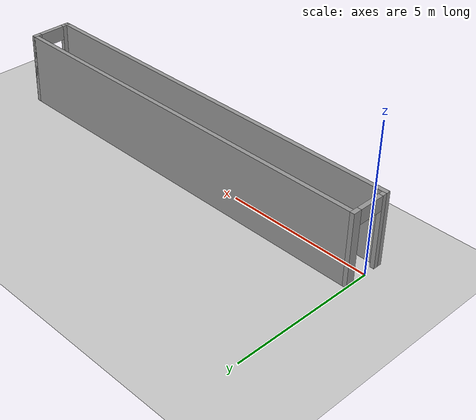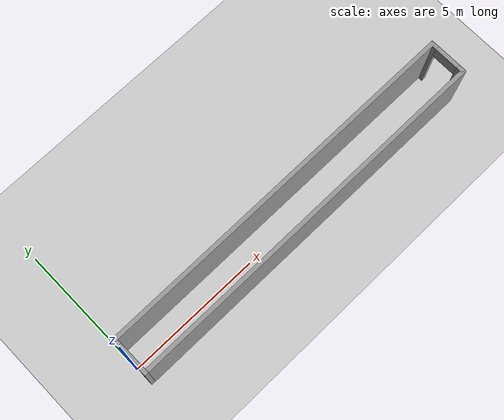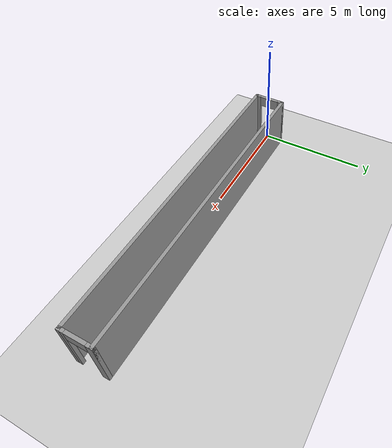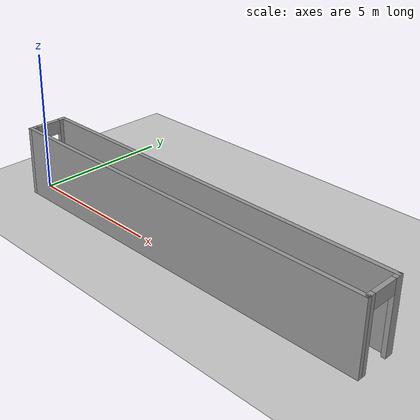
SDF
<sdf version="1.6">
 <world name="default">
  <light name="sun" type="directional">
   <pose>0 0 10 0 -0 0</pose>
   <diffuse>0.8 0.8 0.8 1</diffuse>
   <specular>0.2 0.2 0.2 1</specular>
   <attenuation>
    <range>1000</range>
    <constant>0.9</constant>
    <linear>0.01</linear>
    <quadratic>0.001</quadratic>
   </attenuation>
   <direction>-0.5 0.1 -0.9</direction>
  </light>
  <model name="ground_plane">
   <static>1</static>
   <link name="link">
    <collision name="collision">
     <geometry><plane><normal>0 0 1</normal><size>100 100</size></plane></geometry>
     <surface>
      <contact><collide_bitmask>65535</collide_bitmask></contact>
      <friction><ode><mu>100</mu><mu2>50</mu2></ode></friction>
     </surface>
    </collision>
    <visual name="visual">
     <cast_shadows>0</cast_shadows>
     <geometry><plane><normal>0 0 1</normal><size>100 100</size></plane></geometry>
     <material>
      <script><uri>file://media/materials/scripts/gazebo.material</uri><name>Gazebo/Grey</name></script>
     </material>
    </visual>
   </link>
  </model>
  <gravity>0 0 -9.8</gravity>
  <magnetic_field>6e-06 2.3e-05 -4.2e-05</magnetic_field>
  <atmosphere type="adiabatic"/>
  <physics name="default_physics" default="0" type="ode">
   <max_step_size>0.001</max_step_size>
   <real_time_factor>1</real_time_factor>
   <real_time_update_rate>1000</real_time_update_rate>
  </physics>
  <scene><ambient>0.4 0.4 0.4 1</ambient><background>0.7 0.7 0.7 1</background><shadows>1</shadows></scene>
  <spherical_coordinates>
   <surface_model>EARTH_WGS84</surface_model>
   <latitude_deg>0</latitude_deg>
   <longitude_deg>0</longitude_deg>
   <elevation>0</elevation>
   <heading_deg>0</heading_deg>
  </spherical_coordinates>
  <model name="world_2">
   <pose>7 0.75 0 0 -0 0</pose>
   <link name="Wall_1">
    <collision name="Wall_1_Collision">
     <geometry><box><size>14 0.15 2.5</size></box></geometry>
     <pose>0 0 1.25 0 -0 0</pose>
    </collision>
    <visual name="Wall_1_Visual">
     <pose>0 0 1.25 0 -0 0</pose>
     <geometry><box><size>14 0.15 2.5</size></box></geometry>
     <material>
      <script><uri>file://media/materials/scripts/gazebo.material</uri><name>Gazebo/Grey</name></script>
      <ambient>1 1 1 1</ambient>
     </material>
     <meta><layer>0</layer></meta>
    </visual>
    <pose>0 -0.0125 0 0 -0 0</pose>
   </link>
   <link name="Wall_4">
    <pose>6.925 -0.6875 0 0 -0 -1.5708</pose>
    <visual name="Wall_4_Visual_0">
     <pose>-0.6025 0 1.25 0 -0 0</pose>
     <geometry><box><size>0.295 0.15 2.5</size></box></geometry>
     <material>
      <script><uri>file://media/materials/scripts/gazebo.material</uri><name>Gazebo/Grey</name></script>
      <ambient>1 1 1 1</ambient>
     </material>
     <meta><layer>0</layer></meta>
    </visual>
    <collision name="Wall_4_Collision_0">
     <geometry><box><size>0.295 0.15 2.5</size></box></geometry>
     <pose>-0.6025 0 1.25 0 -0 0</pose>
    </collision>
    <visual name="Wall_4_Visual_1">
     <pose>0.5975 0 1.25 0 -0 0</pose>
     <geometry><box><size>0.305 0.15 2.5</size></box></geometry>
     <material>
      <script><uri>file://media/materials/scripts/gazebo.material</uri><name>Gazebo/Grey</name></script>
      <ambient>1 1 1 1</ambient>
     </material>
     <meta><layer>0</layer></meta>
    </visual>
    <collision name="Wall_4_Collision_1">
     <geometry><box><size>0.305 0.15 2.5</size></box></geometry>
     <pose>0.5975 0 1.25 0 -0 0</pose>
    </collision>
    <visual name="Wall_4_Visual_2">
     <pose>-0.005 0 2.25 0 -0 0</pose>
     <geometry><box><size>0.9 0.15 0.5</size></box></geometry>
     <material>
      <script><uri>file://media/materials/scripts/gazebo.material</uri><name>Gazebo/Grey</name></script>
      <ambient>1 1 1 1</ambient>
     </material>
     <meta><layer>0</layer></meta>
    </visual>
    <collision name="Wall_4_Collision_2">
     <geometry><box><size>0.9 0.15 0.5</size></box></geometry>
     <pose>-0.005 0 2.25 0 -0 0</pose>
    </collision>
   </link>
   <link name="Wall_5">
    <collision name="Wall_5_Collision">
     <geometry><box><size>14 0.15 2.5</size></box></geometry>
     <pose>0 0 1.25 0 -0 0</pose>
    </collision>
    <visual name="Wall_5_Visual">
     <pose>0 0 1.25 0 -0 0</pose>
     <geometry><box><size>14 0.15 2.5</size></box></geometry>
     <material>
      <script><uri>file://media/materials/scripts/gazebo.material</uri><name>Gazebo/Grey</name></script>
      <ambient>1 1 1 1</ambient>
     </material>
     <meta><layer>0</layer></meta>
    </visual>
    <pose>0 -1.3625 0 0 -0 3.14159</pose>
   </link>
   <link name="Wall_6">
    <pose>-6.925 -0.6875 0 0 -0 1.5708</pose>
    <visual name="Wall_6_Visual_0">
     <pose>-0.5975 0 1.25 0 -0 0</pose>
     <geometry><box><size>0.305 0.15 2.5</size></box></geometry>
     <material>
      <script><uri>file://media/materials/scripts/gazebo.material</uri><name>Gazebo/Grey</name></script>
      <ambient>1 1 1 1</ambient>
     </material>
     <meta><layer>0</layer></meta>
    </visual>
    <collision name="Wall_6_Collision_0">
     <geometry><box><size>0.305 0.15 2.5</size></box></geometry>
     <pose>-0.5975 0 1.25 0 -0 0</pose>
    </collision>
    <visual name="Wall_6_Visual_1">
     <pose>0.6025 0 1.25 0 -0 0</pose>
     <geometry><box><size>0.295 0.15 2.5</size></box></geometry>
     <material>
      <script><uri>file://media/materials/scripts/gazebo.material</uri><name>Gazebo/Grey</name></script>
      <ambient>1 1 1 1</ambient>
     </material>
     <meta><layer>0</layer></meta>
    </visual>
    <collision name="Wall_6_Collision_1">
     <geometry><box><size>0.295 0.15 2.5</size></box></geometry>
     <pose>0.6025 0 1.25 0 -0 0</pose>
    </collision>
    <visual name="Wall_6_Visual_2">
     <pose>0.005 0 2.25 0 -0 0</pose>
     <geometry><box><size>0.9 0.15 0.5</size></box></geometry>
     <material>
      <script><uri>file://media/materials/scripts/gazebo.material</uri><name>Gazebo/Grey</name></script>
      <ambient>1 1 1 1</ambient>
     </material>
     <meta><layer>0</layer></meta>
    </visual>
    <collision name="Wall_6_Collision_2">
     <geometry><box><size>0.9 0.15 0.5</size></box></geometry>
     <pose>0.005 0 2.25 0 -0 0</pose>
    </collision>
   </link>
   <static>1</static>
  </model>
  <light name="user_spot_light_0" type="spot">
   <pose>8.52322 -0.004887 1 0 -0 0</pose>
   <diffuse>0.5 0.5 0.5 1</diffuse>
   <specular>0.1 0.1 0.1 1</specular>
   <direction>0 0 -1</direction>
   <attenuation>
    <range>20</range>
    <constant>0.5</constant>
    <linear>0.01</linear>
    <quadratic>0.001</quadratic>
   </attenuation>
   <cast_shadows>0</cast_shadows>
   <spot><inner_angle>0.6</inner_angle><outer_angle>1</outer_angle><falloff>1</falloff></spot>
  </light>
 </world>
</sdf>
